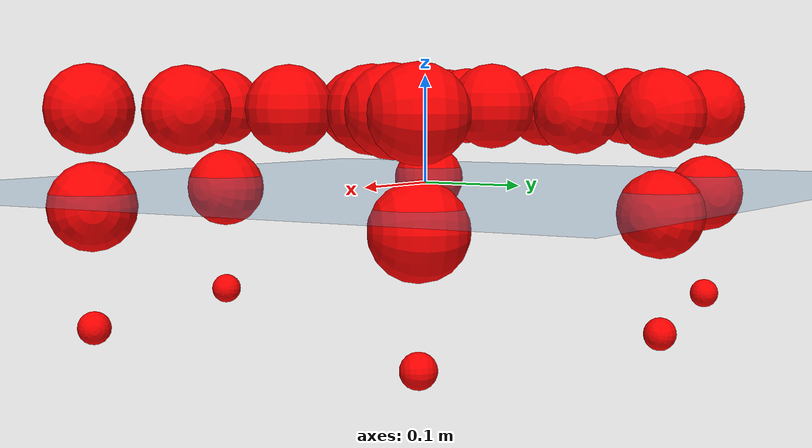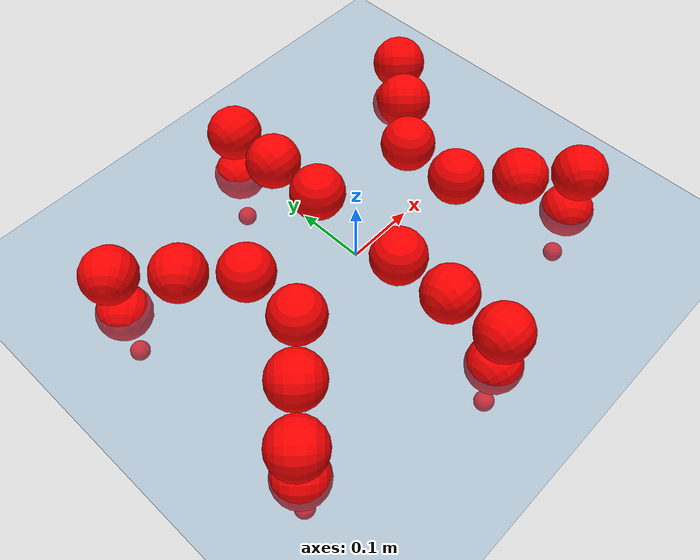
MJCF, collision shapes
<mujoco model="Golem">
  <compiler angle="radian" assetdir="assets" balanceinertia="true" inertiafromgeom="false"/>

  <option timestep="0.005" density="1.2" viscosity="2e-05"/>

  <size nkey="1"/>

  <visual>
    <quality shadowsize="8192"/>
    <map shadowclip="0.5"/>
  </visual>

  <default>
    <default class="/">
      <joint armature="0.01" damping="0.01" frictionloss="0.01"/>
      <geom contype="0" conaffinity="0" group="1" solref="-1000 -80"/>
      <site size="0.01 0.005 0.005" group="5"/>
      <general forcelimited="true" biastype="affine" gainprm="25" biasprm="0 -25 -0.5"/>
      <default class="visual">
        <geom type="mesh" group="2"/>
      </default>
      <default class="collision">
        <geom group="3"/>
      </default>
      <default class="foot">
        <geom size="0.01 0 0" condim="6" group="4" priority="1" solimp="0.015 1 0.01"/>
      </default>
      <default class="reward_collision_sphere">
        <geom group="5" rgba="1 0 0 1"/>
      </default>
    </default>
  </default>

  <asset>
    <texture type="skybox" colorspace="auto" name="//unnamed_texture_0" builtin="gradient" rgb1="0.95 0.95 0.95" rgb2="0.95 0.95 0.95" width="100" height="600"/>
    <texture type="2d" colorspace="auto" name="texplane" builtin="checker" rgb1="0.345 0.575 0.748" rgb2="0.345 0.575 0.748" markrgb="1 1 1" width="512" height="512"/>
    <material name="MatPlane" class="/" texture="texplane" texuniform="true" texrepeat="2 2" specular="0.9"/>
    <mesh name="body" class="/" file="body.stl" scale="0.001 0.001 0.001"/>
    <mesh name="coxa" class="/" file="coxa.stl" scale="0.001 0.001 0.001"/>
    <mesh name="femur" class="/" file="femur.stl" scale="0.001 0.001 0.001"/>
    <mesh name="tibia" class="/" file="tibia.stl" scale="0.001 0.001 0.001"/>
    <mesh name="tarsus" class="/" file="tarsus.stl" scale="0.001 0.001 0.001"/>
  </asset>

  <worldbody>
    <geom name="floor" class="/" size="100 100 0.125" type="plane" group="0" material="MatPlane"/>
    <light name="toplight_shadow" class="/" pos="0 0 5" dir="0.0990148 0.0990148 -0.990148" type="directional" ambient="0.04 0.04 0.04" diffuse="0.55 0.55 0.55" specular="0.12 0.12 0.12"/>
    <light name="toplight_fill" class="/" pos="0 0 5" dir="0.0990148 0.0990148 -0.990148" type="directional" castshadow="false" ambient="0.04 0.04 0.04" diffuse="0.3 0.3 0.3" specular="0.08 0.08 0.08"/>
    <body name="trunk" pos="0.000516068 0.000547007 -0.00251167" quat="1 0.000107929 5.69373e-05 3.24218e-05">
      <inertial pos="0.000291225 -6.36231e-05 -0.00185315" quat="0.999984 0.00350246 -0.00435176 0.00111879" mass="3.37533" diaginertia="0.00804512 0.00290197 0.0197563"/>
      <joint name="//unnamed_joint_0" type="free"/>
      <geom name="//unnamed_geom_1" class="/" pos="0 0 0.0733995" quat="1 0 0 0" type="mesh" rgba="0.9 0.9 0.9 1" mesh="body"/>
      <site name="imu" class="/" pos="0.127751 -0.00200087 0.109608" size="0.00962287"/>
      <camera name="track" class="/" pos="0 -1.55516 0" quat="0.707107 0.707107 0 0" mode="trackcom"/>
      <camera name="ego_camera" class="/" pos="0.125114 0 0.114687" quat="-0.5 -0.5 0.5 0.5"/>
      <body name="coxa_RR" pos="-0.171819 -0.0649376 0.0728909" quat="0.382693 1.13906e-05 -2.71136e-05 -0.923875">
        <inertial pos="6.8687e-05 -0.00242205 0.000946695" quat="0.999995 0.000581446 -0.00260963 0.00192077" mass="0.172363" diaginertia="0.007894 0.00282215 0.0189422"/>
        <joint name="coxa_joint_RR" class="/" pos="0 0 0" axis="0.00765039 -0.00236257 -0.999968" range="-3.13612 3.12321" armature="0.00958039" damping="0.0138583" frictionloss="0.0096875"/>
        <geom name="//unnamed_geom_2" class="/" type="mesh" rgba="0.2 0.2 0.2 1" mesh="coxa"/>
        <geom name="//unnamed_geom_3" class="reward_collision_sphere" size="0.0384915" pos="-0.0288724 0 0"/>
        <body name="femur_RR" pos="0.0584346 -0.000547015 0.000110597" quat="0.500235 -0.500099 0.499904 0.499762">
          <inertial pos="0.000991137 -2.3558e-05 0.000113484" quat="0.999999 0.000892794 -0.00119842 -0.000714013" mass="0.177503" diaginertia="0.0082293 0.00281562 0.0197019"/>
          <joint name="femur_joint_RR" class="/" pos="0 0 0" axis="0.00024065 -0.000989456 -0.999999" range="-3.15859 3.09367" armature="0.00919398" damping="0" frictionloss="0.0101281"/>
          <geom name="//unnamed_geom_4" class="/" type="mesh" rgba="0.9 0.9 0.9 1" mesh="femur"/>
          <geom name="//unnamed_geom_5" class="reward_collision_sphere" size="0.0384915"/>
          <body name="tibia_RR" pos="0.00109752 -0.0827399 0.00211269" quat="0.000126273 1 -5.30996e-06 5.83687e-05">
            <inertial pos="-0.00187341 -0.000297203 -4.34275e-05" quat="0.999978 -0.00275811 -0.00399211 -0.00460288" mass="0.177883" diaginertia="0.00815126 0.00284133 0.0199452"/>
            <joint name="tibia_joint_RR" class="/" pos="0 0 0" axis="-0.000214852 0.00299322 0.999995" range="-3.18839 3.15591" armature="0.0090787" damping="0" frictionloss="0.00980122"/>
            <geom name="//unnamed_geom_6" class="/" type="mesh" rgba="0.2 0.2 0.2 1" mesh="tibia"/>
            <geom name="//unnamed_geom_7" class="reward_collision_sphere" size="0.0384915"/>
            <body name="tarsus_RR" pos="0.0827841 0.00120401 0.000142673" quat="1 -0.000294556 -0.000380836 -0.000146067">
              <inertial pos="0.0564005 0.00257451 -0.00107969" quat="0.500168 0.503122 0.496488 0.5002" mass="0.176798" diaginertia="0.00822038 0.00282267 0.0198071"/>
              <joint name="tarsus_joint_RR" class="/" pos="0 0 0" axis="-5.06968e-05 -5.611e-05 1" range="-3.13994 3.13537" armature="0.0102777" damping="0.00764333" frictionloss="0.0103585"/>
              <geom name="//unnamed_geom_8" class="/" type="mesh" rgba="0.9 0.9 0.9 1" mesh="tarsus"/>
              <geom name="foot_1" class="foot" size="0.00916824" pos="0.10779 0 0" quat="0 -0.707107 0 0.707107"/>
              <geom name="//unnamed_geom_10" class="reward_collision_sphere" size="0.0384915"/>
              <geom name="//unnamed_geom_11" class="reward_collision_sphere" size="0.0144343" pos="0.103459 0 0"/>
              <site name="foot_1" class="foot" pos="0.10779 0 0" quat="0 -0.707107 0 0.707107" size="0.00962287"/>
            </body>
          </body>
        </body>
      </body>
      <body name="coxa_RM" pos="-0.000277766 -0.103861 0.0712586" quat="0.70661 -0.00103907 0.000406166 -0.707603">
        <inertial pos="-0.00189866 0.00021814 0.00094336" quat="1 0.000120194 3.23919e-05 -5.94658e-05" mass="0.175507" diaginertia="0.00804665 0.00278811 0.0201424"/>
        <joint name="coxa_joint_RM" class="/" pos="0 0 0" axis="0.000689014 -4.63965e-05 -1" range="-3.19126 3.14478" armature="0.0101966" damping="0.010885" frictionloss="0.00958852"/>
        <geom name="//unnamed_geom_12" class="/" type="mesh" rgba="0.2 0.2 0.2 1" mesh="coxa"/>
        <geom name="//unnamed_geom_13" class="reward_collision_sphere" size="0.0384915" pos="-0.0288724 0 0"/>
        <body name="femur_RM" pos="0.0549008 0.000702126 -3.49209e-05" quat="0.5002 -0.500769 0.499534 0.499495">
          <inertial pos="-0.000535449 0.000712234 -0.000791583" quat="0.999946 -0.00297467 0.00546648 0.00831823" mass="0.182247" diaginertia="0.00844154 0.00284679 0.0201171"/>
          <joint name="femur_joint_RM" class="/" pos="0 0 0" axis="0.00218869 -0.00146538 -0.999997" range="-3.14057 3.1439" armature="0.00968001" damping="0.00979187" frictionloss="0.0100335"/>
          <geom name="//unnamed_geom_14" class="/" type="mesh" rgba="0.9 0.9 0.9 1" mesh="femur"/>
          <geom name="//unnamed_geom_15" class="reward_collision_sphere" size="0.0384915"/>
          <body name="tibia_RM" pos="-0.000633634 -0.0830728 0.00158741" quat="0.000191588 1 8.06633e-06 -1.58144e-05">
            <inertial pos="0.00122349 0.00198857 0.000470554" quat="0.999992 -0.00294513 0.00265518 -0.000114598" mass="0.183878" diaginertia="0.0085433 0.00292741 0.0204719"/>
            <joint name="tibia_joint_RM" class="/" pos="0 0 0" axis="0.00040004 -4.79654e-05 1" range="-3.12139 3.08703" armature="0.0095105" damping="0" frictionloss="0.00988773"/>
            <geom name="//unnamed_geom_16" class="/" type="mesh" rgba="0.2 0.2 0.2 1" mesh="tibia"/>
            <geom name="//unnamed_geom_17" class="reward_collision_sphere" size="0.0384915"/>
            <body name="tarsus_RM" pos="0.0818872 -0.00240981 0.000450666" quat="1 0.000183411 0.000551058 5.99204e-05">
              <inertial pos="0.057037 0.00297621 -0.000831445" quat="0.500841 0.498949 0.49996 0.500248" mass="0.170043" diaginertia="0.00817451 0.00277758 0.019651"/>
              <joint name="tarsus_joint_RM" class="/" pos="0 0 0" axis="4.68254e-05 -8.83398e-05 1" range="-3.13996 3.15058" armature="0.00972455" damping="0.00385009" frictionloss="0.00954546"/>
              <geom name="//unnamed_geom_18" class="/" type="mesh" rgba="0.9 0.9 0.9 1" mesh="tarsus"/>
              <geom name="foot_2" class="foot" size="0.00936223" pos="0.10779 0 0" quat="0 -0.707107 0 0.707107"/>
              <geom name="//unnamed_geom_20" class="reward_collision_sphere" size="0.0384915"/>
              <geom name="//unnamed_geom_21" class="reward_collision_sphere" size="0.0144343" pos="0.103459 0 0"/>
              <site name="foot_2" class="foot" pos="0.10779 0 0" quat="0 -0.707107 0 0.707107" size="0.00962287"/>
            </body>
          </body>
        </body>
      </body>
      <body name="coxa_RF" pos="0.172454 -0.0642066 0.0728583" quat="0.924059 -0.000112751 -0.000114238 -0.382249">
        <inertial pos="-0.00214995 -0.000993162 0.00197535" quat="1 -0.000639772 -0.000346374 -5.38743e-05" mass="0.181603" diaginertia="0.00845805 0.00283972 0.0202834"/>
        <joint name="coxa_joint_RF" class="/" pos="0 0 0" axis="0.00237429 0.000912608 -0.999997" range="-3.14528 3.13593" armature="0.00879695" damping="0.00583855" frictionloss="0.00986533"/>
        <geom name="//unnamed_geom_22" class="/" type="mesh" rgba="0.2 0.2 0.2 1" mesh="coxa"/>
        <geom name="//unnamed_geom_23" class="reward_collision_sphere" size="0.0384915" pos="-0.0288724 0 0"/>
        <body name="femur_RF" pos="0.0592728 -0.00115319 -0.00063637" quat="0.499735 -0.499258 0.500374 0.500632">
          <inertial pos="0.000185859 0.000381382 0.000220767" quat="1 -0.000118721 -0.000314355 -0.000295466" mass="0.168292" diaginertia="0.00823088 0.00278641 0.019146"/>
          <joint name="femur_joint_RF" class="/" pos="0 0 0" axis="-3.55757e-05 0.00222772 -0.999998" range="-3.15675 3.0902" armature="0.0084665" damping="0.0021323" frictionloss="0.00838106"/>
          <geom name="//unnamed_geom_24" class="/" type="mesh" rgba="0.9 0.9 0.9 1" mesh="femur"/>
          <geom name="//unnamed_geom_25" class="reward_collision_sphere" size="0.0384915"/>
          <body name="tibia_RF" pos="-0.00112321 -0.0815318 0.00233783" quat="-7.23467e-05 1 -2.66572e-05 0.000120084">
            <inertial pos="-0.00219166 0.00073336 -3.1763e-05" quat="0.999996 -0.00231803 0.00145559 -6.20672e-05" mass="0.177705" diaginertia="0.00803387 0.00282334 0.0197154"/>
            <joint name="tibia_joint_RF" class="/" pos="0 0 0" axis="0.00183293 -0.00129549 0.999997" range="-3.1296 3.1483" armature="0.00943961" damping="0" frictionloss="0.00974231"/>
            <geom name="//unnamed_geom_26" class="/" type="mesh" rgba="0.2 0.2 0.2 1" mesh="tibia"/>
            <geom name="//unnamed_geom_27" class="reward_collision_sphere" size="0.0384915"/>
            <body name="tarsus_RF" pos="0.0828082 -0.00132419 -0.00195006" quat="1 9.29221e-05 -0.000249931 -0.000450554">
              <inertial pos="0.0558049 -0.000119394 -0.000537868" quat="0.49637 0.510126 0.500677 0.492657" mass="0.177164" diaginertia="0.00829504 0.00288884 0.0192808"/>
              <joint name="tarsus_joint_RF" class="/" pos="0 0 0" axis="-0.000582762 0.0021849 0.999997" range="-3.12185 3.13983" armature="0.00841493" damping="0.00186476" frictionloss="0.00866792"/>
              <geom name="//unnamed_geom_28" class="/" type="mesh" rgba="0.9 0.9 0.9 1" mesh="tarsus"/>
              <geom name="foot_3" class="foot" size="0.0092974" pos="0.10779 0 0" quat="0 -0.707107 0 0.707107"/>
              <geom name="//unnamed_geom_30" class="reward_collision_sphere" size="0.0384915"/>
              <geom name="//unnamed_geom_31" class="reward_collision_sphere" size="0.0144343" pos="0.103459 0 0"/>
              <site name="foot_3" class="foot" pos="0.10779 0 0" quat="0 -0.707107 0 0.707107" size="0.00962287"/>
            </body>
          </body>
        </body>
      </body>
      <body name="coxa_LR" pos="-0.170986 0.0673152 0.0718402" quat="0.382863 -0.000182029 -2.13332e-06 0.923805">
        <inertial pos="-0.000747124 -0.000374123 -4.01459e-05" quat="0.999924 -0.00798848 -0.0066371 0.00667725" mass="0.179884" diaginertia="0.00823749 0.00289506 0.0198144"/>
        <joint name="coxa_joint_LR" class="/" pos="0 0 0" axis="0.000683898 -0.000990893 -0.999999" range="-3.13904 3.13044" armature="0.0104094" damping="0.0147841" frictionloss="0.00916023"/>
        <geom name="//unnamed_geom_32" class="/" type="mesh" rgba="0.2 0.2 0.2 1" mesh="coxa"/>
        <geom name="//unnamed_geom_33" class="reward_collision_sphere" size="0.0384915" pos="-0.0288724 0 0"/>
        <body name="femur_LR" pos="0.0563416 -0.000375704 0.00106452" quat="0.49986 -0.500407 0.499948 0.499785">
          <inertial pos="-0.00204696 -0.0024907 0.00221854" quat="1 -0.000371105 -6.79534e-05 0.000163907" mass="0.183216" diaginertia="0.00822801 0.00291556 0.020063"/>
          <joint name="femur_joint_LR" class="/" pos="0 0 0" axis="-0.0127798 -0.00422503 0.999909" range="-3.1612 3.11129" armature="0.0108626" damping="0" frictionloss="0.0087045"/>
          <geom name="//unnamed_geom_34" class="/" type="mesh" rgba="0.9 0.9 0.9 1" mesh="femur"/>
          <geom name="//unnamed_geom_35" class="reward_collision_sphere" size="0.0384915"/>
          <body name="tibia_LR" pos="0.00150179 -0.0870692 -0.000699869" quat="-4.35211e-05 1 -0.000113992 0.000213957">
            <inertial pos="-8.88663e-05 -0.00230602 -8.95937e-05" quat="1 -0.000308544 0.000790578 -5.89447e-05" mass="0.172566" diaginertia="0.00810202 0.00280434 0.0189499"/>
            <joint name="tibia_joint_LR" class="/" pos="0 0 0" axis="-0.0102528 0.000142072 -0.999947" range="-3.14176 3.09486" armature="0.00951759" damping="0" frictionloss="0.0101042"/>
            <geom name="//unnamed_geom_36" class="/" type="mesh" rgba="0.2 0.2 0.2 1" mesh="tibia"/>
            <geom name="//unnamed_geom_37" class="reward_collision_sphere" size="0.0384915"/>
            <body name="tarsus_LR" pos="0.0879843 -0.000901001 -0.000120636" quat="1 0.000144111 0.000374665 5.03319e-05">
              <inertial pos="0.0590628 -9.73597e-05 -0.00135131" quat="0.50189 0.499415 0.498316 0.500372" mass="0.176242" diaginertia="0.00825483 0.00284601 0.0195522"/>
              <joint name="tarsus_joint_LR" class="/" pos="0 0 0" axis="-0.000787718 -0.000352295 -1" range="-3.17093 3.13611" armature="0.00873478" damping="0.0273101" frictionloss="0.00939105"/>
              <geom name="//unnamed_geom_38" class="/" type="mesh" rgba="0.9 0.9 0.9 1" mesh="tarsus"/>
              <geom name="foot_4" class="foot" size="0.00985682" pos="0.10779 0 0" quat="0.707107 0 -0.707107 0"/>
              <geom name="//unnamed_geom_40" class="reward_collision_sphere" size="0.0384915"/>
              <geom name="//unnamed_geom_41" class="reward_collision_sphere" size="0.0144343" pos="0.103459 0 0"/>
              <site name="foot_4" class="foot" pos="0.10779 0 0" quat="0.707107 0 -0.707107 0" size="0.00962287"/>
            </body>
          </body>
        </body>
      </body>
      <body name="coxa_LM" pos="0.00200513 0.101686 0.0743453" quat="0.707047 -0.000184087 -0.000187533 0.707167">
        <inertial pos="0.000987471 -0.00105514 -0.000304432" quat="1 0.00011722 0.000524969 -9.89334e-05" mass="0.172786" diaginertia="0.00838572 0.00284272 0.019452"/>
        <joint name="coxa_joint_LM" class="/" pos="0 0 0" axis="-0.0105519 0.00101653 -0.999944" range="-3.15016 3.19051" armature="0.00956612" damping="0.0089684" frictionloss="0.00974137"/>
        <geom name="//unnamed_geom_42" class="/" type="mesh" rgba="0.2 0.2 0.2 1" mesh="coxa"/>
        <geom name="//unnamed_geom_43" class="reward_collision_sphere" size="0.0384915" pos="-0.0288724 0 0"/>
        <body name="femur_LM" pos="0.056938 0.000581196 -0.00323617" quat="0.500606 -0.500447 0.499359 0.499587">
          <inertial pos="0.00131644 0.000144255 -0.00102176" quat="1 -0.000169197 9.5833e-05 5.54071e-06" mass="0.187383" diaginertia="0.0085142 0.00289858 0.0206508"/>
          <joint name="femur_joint_LM" class="/" pos="0 0 0" axis="0.00412448 -0.00341341 0.999986" stiffness="0.0101517" range="-3.18734 3.09286" armature="0.00917744" damping="0" frictionloss="0.0101023"/>
          <geom name="//unnamed_geom_44" class="/" type="mesh" rgba="0.9 0.9 0.9 1" mesh="femur"/>
          <geom name="//unnamed_geom_45" class="reward_collision_sphere" size="0.0384915"/>
          <body name="tibia_LM" pos="0.0020357 -0.0808224 -0.000429669" quat="-0.000410273 1 -0.000139494 0.000322822">
            <inertial pos="0.000993784 -0.00142258 0.000404772" quat="0.99999 0.00089082 -0.00274128 0.00345961" mass="0.17734" diaginertia="0.0083067 0.00276257 0.0200133"/>
            <joint name="tibia_joint_LM" class="/" pos="0 0 0" axis="0.00294557 -0.00227376 -0.999993" range="-3.14825 3.1377" armature="0.00857265" damping="0" frictionloss="0.00949685"/>
            <geom name="//unnamed_geom_46" class="/" type="mesh" rgba="0.2 0.2 0.2 1" mesh="tibia"/>
            <geom name="//unnamed_geom_47" class="reward_collision_sphere" size="0.0384915"/>
            <body name="tarsus_LM" pos="0.0867968 -0.000466561 -0.000795865" quat="1 -7.57239e-05 8.98376e-05 9.4296e-05">
              <inertial pos="0.0583668 0.000244656 0.00171631" quat="0.49955 0.499312 0.500949 0.500187" mass="0.179013" diaginertia="0.00798077 0.00289915 0.0198942"/>
              <joint name="tarsus_joint_LM" class="/" pos="0 0 0" axis="-0.000246254 -0.000383954 -1" range="-3.11806 3.14866" armature="0.00945056" damping="0.00285637" frictionloss="0.009681"/>
              <geom name="//unnamed_geom_48" class="/" type="mesh" rgba="0.9 0.9 0.9 1" mesh="tarsus"/>
              <geom name="foot_5" class="foot" size="0.00875576" pos="0.10779 0 0" quat="0.707107 0 -0.707107 0"/>
              <geom name="//unnamed_geom_50" class="reward_collision_sphere" size="0.0384915"/>
              <geom name="//unnamed_geom_51" class="reward_collision_sphere" size="0.0144343" pos="0.103459 0 0"/>
              <site name="foot_5" class="foot" pos="0.10779 0 0" quat="0.707107 0 -0.707107 0" size="0.00962287"/>
            </body>
          </body>
        </body>
      </body>
      <body name="coxa_LF" pos="0.17361 0.0643555 0.0725994" quat="0.924008 -0.000150426 -0.00114954 0.382372">
        <inertial pos="0.000590263 -0.000170299 0.00181834" quat="0.999987 0.00123107 0.00298882 0.00406233" mass="0.179615" diaginertia="0.00839753 0.00277578 0.0199695"/>
        <joint name="coxa_joint_LF" class="/" pos="0 0 0" axis="0.00768336 -0.00929261 -0.999927" range="-3.15322 3.14061" armature="0.009677" damping="0.00909849" frictionloss="0.00875297"/>
        <geom name="//unnamed_geom_52" class="/" type="mesh" rgba="0.2 0.2 0.2 1" mesh="coxa"/>
        <geom name="//unnamed_geom_53" class="reward_collision_sphere" size="0.0384915" pos="-0.0288724 0 0"/>
        <body name="femur_LF" pos="0.05829 0.000422855 -0.000569513" quat="0.499918 -0.500044 0.500243 0.499795">
          <inertial pos="-0.000254943 0.000125105 0.00235086" quat="0.999988 0.00396529 -0.00288085 0.000564966" mass="0.1841" diaginertia="0.00810182 0.00287947 0.019904"/>
          <joint name="femur_joint_LF" class="/" pos="0 0 0" axis="0.00156323 0.00811867 0.999966" range="-3.13914 3.13683" armature="0.00980873" damping="0.00759809" frictionloss="0.0106427"/>
          <geom name="//unnamed_geom_54" class="/" type="mesh" rgba="0.9 0.9 0.9 1" mesh="femur"/>
          <geom name="//unnamed_geom_55" class="reward_collision_sphere" size="0.0384915"/>
          <body name="tibia_LF" pos="0.000809732 -0.0822482 0.00236897" quat="-0.00048487 0.999999 0.000582526 -0.000963686">
            <inertial pos="-0.000744217 0.00123355 -0.00209142" quat="0.999925 -0.011023 0.00456477 -0.00261953" mass="0.184311" diaginertia="0.00834891 0.00285374 0.0198611"/>
            <joint name="tibia_joint_LF" class="/" pos="0 0 0" axis="0.00141891 -0.000975625 -0.999999" range="-3.08788 3.12938" armature="0.00957487" damping="0.0142377" frictionloss="0.00966219"/>
            <geom name="//unnamed_geom_56" class="/" type="mesh" rgba="0.2 0.2 0.2 1" mesh="tibia"/>
            <geom name="//unnamed_geom_57" class="reward_collision_sphere" size="0.0384915"/>
            <body name="tarsus_LF" pos="0.0868176 0.0022964 0.000290425" quat="1 -4.88434e-05 9.0484e-05 -5.75013e-05">
              <inertial pos="0.0555762 0.00107008 -0.000152338" quat="0.500021 0.499804 0.500082 0.500093" mass="0.174968" diaginertia="0.00813985 0.00278547 0.0201035"/>
              <joint name="tarsus_joint_LF" class="/" pos="0 0 0" axis="-0.00936954 0.00721512 -0.99993" range="-3.13541 3.10301" armature="0.0107418" damping="0.00579678" frictionloss="0.0108721"/>
              <geom name="//unnamed_geom_58" class="/" type="mesh" rgba="0.9 0.9 0.9 1" mesh="tarsus"/>
              <geom name="foot_6" class="foot" size="0.00914614" pos="0.10779 0 0" quat="0.707107 0 -0.707107 0"/>
              <geom name="//unnamed_geom_60" class="reward_collision_sphere" size="0.0384915"/>
              <geom name="//unnamed_geom_61" class="reward_collision_sphere" size="0.0144343" pos="0.103459 0 0"/>
              <site name="foot_6" class="foot" pos="0.10779 0 0" quat="0.707107 0 -0.707107 0" size="0.00962287"/>
            </body>
          </body>
        </body>
      </body>
    </body>
  </worldbody>

  <contact>
    <pair class="/" geom1="floor" geom2="foot_1" name="//unnamed_contact_0"/>
    <pair class="/" geom1="floor" geom2="foot_2" name="//unnamed_contact_1"/>
    <pair class="/" geom1="floor" geom2="foot_3" name="//unnamed_contact_2"/>
    <pair class="/" geom1="floor" geom2="foot_4" name="//unnamed_contact_3"/>
    <pair class="/" geom1="floor" geom2="foot_5" name="//unnamed_contact_4"/>
    <pair class="/" geom1="floor" geom2="foot_6" name="//unnamed_contact_5"/>
  </contact>

  <actuator>
    <general name="coxa_joint_RR" class="/" joint="coxa_joint_RR" forcerange="-7.16993 7.16993" gainprm="23.2109" biasprm="0 -23.2109 -0.497811"/>
    <general name="femur_joint_RR" class="/" joint="femur_joint_RR" forcerange="-7.36606 7.36606" gainprm="23.2109" biasprm="0 -23.2109 -0.497811"/>
    <general name="tibia_joint_RR" class="/" joint="tibia_joint_RR" forcerange="-6.6371 6.6371" gainprm="23.2109" biasprm="0 -23.2109 -0.497811"/>
    <general name="tarsus_joint_RR" class="/" joint="tarsus_joint_RR" forcerange="-6.55229 6.55229" gainprm="23.2109" biasprm="0 -23.2109 -0.497811"/>
    <general name="coxa_joint_RM" class="/" joint="coxa_joint_RM" forcerange="-6.40429 6.40429" gainprm="23.2109" biasprm="0 -23.2109 -0.497811"/>
    <general name="femur_joint_RM" class="/" joint="femur_joint_RM" forcerange="-6.88588 6.88588" gainprm="23.2109" biasprm="0 -23.2109 -0.497811"/>
    <general name="tibia_joint_RM" class="/" joint="tibia_joint_RM" forcerange="-7.08626 7.08626" gainprm="23.2109" biasprm="0 -23.2109 -0.497811"/>
    <general name="tarsus_joint_RM" class="/" joint="tarsus_joint_RM" forcerange="-6.8852 6.8852" gainprm="23.2109" biasprm="0 -23.2109 -0.497811"/>
    <general name="coxa_joint_RF" class="/" joint="coxa_joint_RF" forcerange="-7.12621 7.12621" gainprm="23.2109" biasprm="0 -23.2109 -0.497811"/>
    <general name="femur_joint_RF" class="/" joint="femur_joint_RF" forcerange="-7.71168 7.71168" gainprm="23.2109" biasprm="0 -23.2109 -0.497811"/>
    <general name="tibia_joint_RF" class="/" joint="tibia_joint_RF" forcerange="-7.66266 7.66266" gainprm="23.2109" biasprm="0 -23.2109 -0.497811"/>
    <general name="tarsus_joint_RF" class="/" joint="tarsus_joint_RF" forcerange="-7.61244 7.61244" gainprm="23.2109" biasprm="0 -23.2109 -0.497811"/>
    <general name="coxa_joint_LR" class="/" joint="coxa_joint_LR" forcerange="-7.08198 7.08198" gainprm="23.2109" biasprm="0 -23.2109 -0.497811"/>
    <general name="femur_joint_LR" class="/" joint="femur_joint_LR" forcerange="-6.98243 6.98243" gainprm="23.2109" biasprm="0 -23.2109 -0.497811"/>
    <general name="tibia_joint_LR" class="/" joint="tibia_joint_LR" forcerange="-7.7074 7.7074" gainprm="23.2109" biasprm="0 -23.2109 -0.497811"/>
    <general name="tarsus_joint_LR" class="/" joint="tarsus_joint_LR" forcerange="-7.66064 7.66064" gainprm="23.2109" biasprm="0 -23.2109 -0.497811"/>
    <general name="coxa_joint_LM" class="/" joint="coxa_joint_LM" forcerange="-7.16858 7.16858" gainprm="23.2109" biasprm="0 -23.2109 -0.497811"/>
    <general name="femur_joint_LM" class="/" joint="femur_joint_LM" forcerange="-6.96393 6.96393" gainprm="23.2109" biasprm="0 -23.2109 -0.497811"/>
    <general name="tibia_joint_LM" class="/" joint="tibia_joint_LM" forcerange="-7.05457 7.05457" gainprm="23.2109" biasprm="0 -23.2109 -0.497811"/>
    <general name="tarsus_joint_LM" class="/" joint="tarsus_joint_LM" forcerange="-7.24062 7.24062" gainprm="23.2109" biasprm="0 -23.2109 -0.497811"/>
    <general name="coxa_joint_LF" class="/" joint="coxa_joint_LF" forcerange="-7.00885 7.00885" gainprm="23.2109" biasprm="0 -23.2109 -0.497811"/>
    <general name="femur_joint_LF" class="/" joint="femur_joint_LF" forcerange="-7.58946 7.58946" gainprm="23.2109" biasprm="0 -23.2109 -0.497811"/>
    <general name="tibia_joint_LF" class="/" joint="tibia_joint_LF" forcerange="-7.52248 7.52248" gainprm="23.2109" biasprm="0 -23.2109 -0.497811"/>
    <general name="tarsus_joint_LF" class="/" joint="tarsus_joint_LF" forcerange="-7.10865 7.10865" gainprm="23.2109" biasprm="0 -23.2109 -0.497811"/>
  </actuator>

  <sensor>
    <gyro site="imu" name="imu_angular_velocity"/>
    <velocimeter site="imu" name="imu_linear_velocity"/>
    <framelinvel objtype="site" objname="foot_1" name="foot_1_global_linear_velocity"/>
    <framelinvel objtype="site" objname="foot_2" name="foot_2_global_linear_velocity"/>
    <framelinvel objtype="site" objname="foot_3" name="foot_3_global_linear_velocity"/>
    <framelinvel objtype="site" objname="foot_4" name="foot_4_global_linear_velocity"/>
    <framelinvel objtype="site" objname="foot_5" name="foot_5_global_linear_velocity"/>
    <framelinvel objtype="site" objname="foot_6" name="foot_6_global_linear_velocity"/>
  </sensor>

  <keyframe>
    <key name="home" qpos="0 0 0.1457 1 0 0 0 0 0 0 0 0 0 0 0 0 0 0 0 0 0 0 0 0 0 0 0 0 0 0 0"/>
  </keyframe>
</mujoco>
